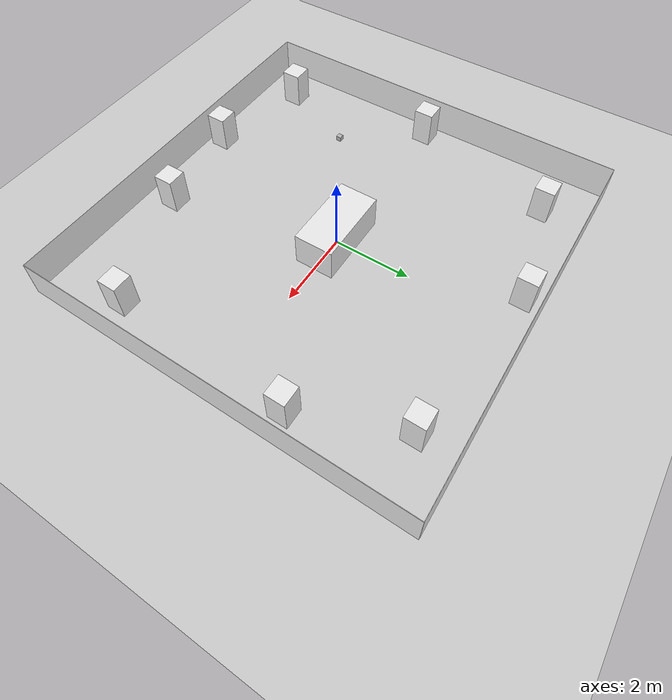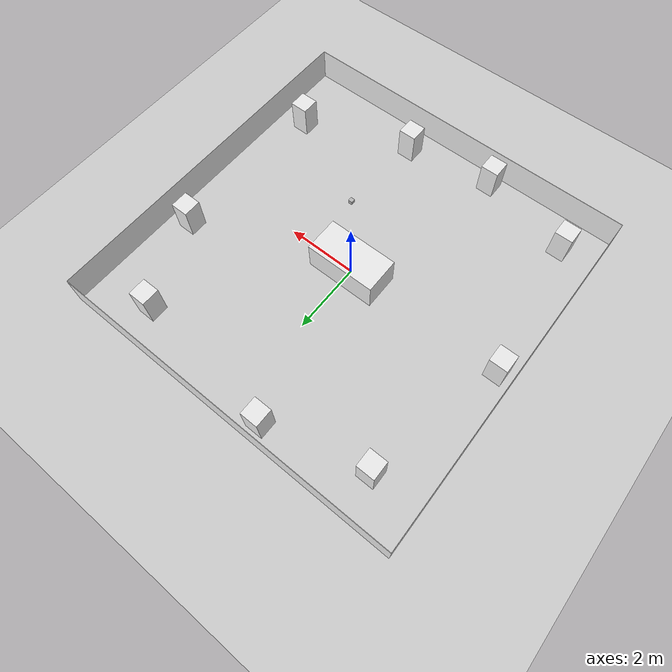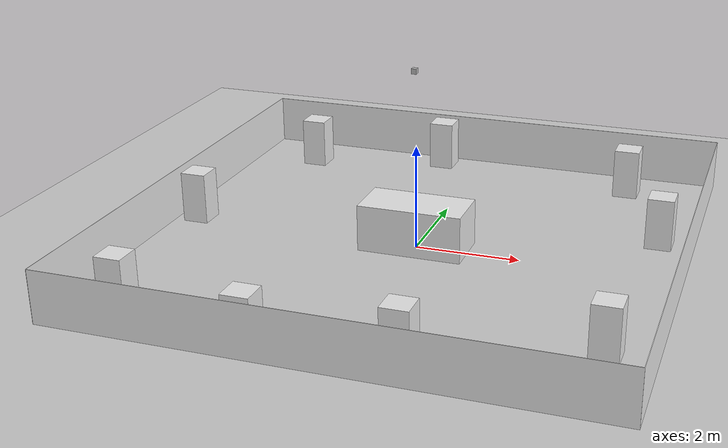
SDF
<sdf version="1.6">
 <world name="default">
  <plugin name="gazebo_occupancy_map" filename="libgazebo_2Dmap_plugin.so">
   <map_resolution>0.1</map_resolution>
   <map_height>0.5</map_height>
   <map_size_x>12</map_size_x>
   <map_size_y>12</map_size_y>
   <init_robot_x>0</init_robot_x>
   <init_robot_y>-3</init_robot_y>
  </plugin>
  <light name="sun" type="directional">
   <cast_shadows>0</cast_shadows>
   <pose>0 0 10 0 -0 0</pose>
   <diffuse>0.8 0.8 0.8 1</diffuse>
   <specular>0.2 0.2 0.2 1</specular>
   <attenuation>
    <range>1000</range>
    <constant>0.9</constant>
    <linear>0.01</linear>
    <quadratic>0.001</quadratic>
   </attenuation>
   <direction>-0.5 0.1 -0.9</direction>
  </light>
  <model name="ground_plane">
   <pose>2 0 0 0 -0 0</pose>
   <static>1</static>
   <link name="link">
    <collision name="collision">
     <geometry><plane><normal>0 0 1</normal><size>100 100</size></plane></geometry>
     <surface>
      <contact><collide_bitmask>65535</collide_bitmask></contact>
      <friction><ode><mu>100</mu><mu2>50</mu2></ode></friction>
     </surface>
    </collision>
    <visual name="visual">
     <cast_shadows>0</cast_shadows>
     <geometry><plane><normal>0 0 1</normal><size>100 100</size></plane></geometry>
     <material>
      <script><uri>file://media/materials/scripts/gazebo.material</uri><name>Gazebo/Grey</name></script>
     </material>
    </visual>
   </link>
  </model>
  <model name="table_cube_0">
   <link name="link">
    <pose>0 0 0.5 0 -0 0</pose>
    <inertial>
     <mass>10</mass>
     <inertia><ixx>0.17</ixx><ixy>0</ixy><ixz>0</ixz><iyy>0.17</iyy><iyz>0</iyz><izz>0.17</izz></inertia>
    </inertial>
    <collision name="collision">
     <geometry><box><size>10 0.01 1</size></box></geometry>
     <surface>
      <contact>
       <poissons_ratio>0.347</poissons_ratio>
       <elastic_modulus>8.8e+09</elastic_modulus>
       <ode><kp>100000</kp><kd>100</kd><max_vel>100</max_vel><min_depth>0.001</min_depth></ode>
      </contact>
     </surface>
    </collision>
    <visual name="visual">
     <geometry><box><size>10 0.01 1</size></box></geometry>
     <material>
      <script><uri>file://media/materials/scripts/gazebo.material</uri><name>Gazebo/White</name></script>
     </material>
    </visual>
   </link>
   <static>1</static>
   <pose>0 -5 0 0 -0 0</pose>
  </model>
  <model name="table_cube_1">
   <link name="link">
    <pose>0 0 0.5 0 -0 0</pose>
    <inertial>
     <mass>10</mass>
     <inertia><ixx>0.17</ixx><ixy>0</ixy><ixz>0</ixz><iyy>0.17</iyy><iyz>0</iyz><izz>0.17</izz></inertia>
    </inertial>
    <collision name="collision">
     <geometry><box><size>10 0.01 1</size></box></geometry>
     <surface>
      <contact>
       <poissons_ratio>0.347</poissons_ratio>
       <elastic_modulus>8.8e+09</elastic_modulus>
       <ode><kp>100000</kp><kd>100</kd><max_vel>100</max_vel><min_depth>0.001</min_depth></ode>
      </contact>
     </surface>
    </collision>
    <visual name="visual">
     <geometry><box><size>10 0.01 1</size></box></geometry>
     <material>
      <script><uri>file://media/materials/scripts/gazebo.material</uri><name>Gazebo/White</name></script>
     </material>
    </visual>
   </link>
   <static>1</static>
   <pose>-5 0 0 0 -0 1.57</pose>
  </model>
  <model name="table_cube_2">
   <link name="link">
    <pose>0 0 0.5 0 -0 0</pose>
    <inertial>
     <mass>10</mass>
     <inertia><ixx>0.17</ixx><ixy>0</ixy><ixz>0</ixz><iyy>0.17</iyy><iyz>0</iyz><izz>0.17</izz></inertia>
    </inertial>
    <collision name="collision">
     <geometry><box><size>10 0.01 1</size></box></geometry>
     <surface>
      <contact>
       <poissons_ratio>0.347</poissons_ratio>
       <elastic_modulus>8.8e+09</elastic_modulus>
       <ode><kp>100000</kp><kd>100</kd><max_vel>100</max_vel><min_depth>0.001</min_depth></ode>
      </contact>
     </surface>
    </collision>
    <visual name="visual">
     <geometry><box><size>10 0.01 1</size></box></geometry>
     <material>
      <script><uri>file://media/materials/scripts/gazebo.material</uri><name>Gazebo/White</name></script>
     </material>
    </visual>
   </link>
   <static>1</static>
   <pose>0 5 0 0 -0 0</pose>
  </model>
  <model name="table_cube_4">
   <link name="link">
    <pose>0 0 0.5 0 -0 0</pose>
    <inertial>
     <mass>10</mass>
     <inertia><ixx>0.17</ixx><ixy>0</ixy><ixz>0</ixz><iyy>0.17</iyy><iyz>0</iyz><izz>0.17</izz></inertia>
    </inertial>
    <collision name="collision">
     <geometry><box><size>10 0.01 1</size></box></geometry>
     <surface>
      <contact>
       <poissons_ratio>0.347</poissons_ratio>
       <elastic_modulus>8.8e+09</elastic_modulus>
       <ode><kp>100000</kp><kd>100</kd><max_vel>100</max_vel><min_depth>0.001</min_depth></ode>
      </contact>
     </surface>
    </collision>
    <visual name="visual">
     <geometry><box><size>10 0.01 1</size></box></geometry>
     <material>
      <script><uri>file://media/materials/scripts/gazebo.material</uri><name>Gazebo/White</name></script>
     </material>
    </visual>
   </link>
   <static>1</static>
   <pose>5 0 0 0 -0 1.57</pose>
  </model>
  <gravity>0 0 -9.8</gravity>
  <magnetic_field>6e-06 2.3e-05 -4.2e-05</magnetic_field>
  <atmosphere type="adiabatic"/>
  <physics name="default_physics" default="0" type="ode">
   <max_step_size>0.001</max_step_size>
   <real_time_factor>1</real_time_factor>
   <real_time_update_rate>1000</real_time_update_rate>
  </physics>
  <scene><ambient>0.4 0.4 0.4 1</ambient><background>0.7 0.7 0.7 1</background><shadows>1</shadows></scene>
  <audio><device>default</device></audio>
  <spherical_coordinates>
   <surface_model>EARTH_WGS84</surface_model>
   <latitude_deg>0</latitude_deg>
   <longitude_deg>0</longitude_deg>
   <elevation>0</elevation>
   <heading_deg>0</heading_deg>
  </spherical_coordinates>
  <model name="distorted_camera">
   <link name="link">
    <pose>0.05 0.05 0.05 0 -0 0</pose>
    <inertial>
     <mass>0.1</mass>
     <inertia>
      <ixx>0.000166667</ixx>
      <iyy>0.000166667</iyy>
      <izz>0.000166667</izz>
      <ixy>0</ixy>
      <ixz>0</ixz>
      <iyz>0</iyz>
     </inertia>
    </inertial>
    <collision name="collision"><geometry><box><size>0.1 0.1 0.1</size></box></geometry></collision>
    <visual name="visual"><geometry><box><size>0.1 0.1 0.1</size></box></geometry></visual>
    <gravity>0</gravity>
    <sensor name="camera" type="camera">
     <camera name="__default__">
      <horizontal_fov>1.047</horizontal_fov>
      <image><width>64</width><height>64</height></image>
      <clip><near>0.1</near><far>100</far></clip>
     </camera>
     <plugin name="camera_controller" filename="libgazebo_ros_camera.so">
      <alwaysOn>1</alwaysOn>
      <updateRate>0.0</updateRate>
      <cameraName>top_down_cam</cameraName>
      <imageTopicName>image_raw</imageTopicName>
      <cameraInfoTopicName>camera_info</cameraInfoTopicName>
      <frameName>camera_link</frameName>
      <hackBaseline>0.07</hackBaseline>
      <distortionK1>0.0</distortionK1>
      <distortionK2>0.0</distortionK2>
      <distortionK3>0.0</distortionK3>
      <distortionT1>0.0</distortionT1>
      <distortionT2>0.0</distortionT2>
     </plugin>
     <always_on>1</always_on>
     <update_rate>30</update_rate>
     <visualize>1</visualize>
    </sensor>
   </link>
   <pose>0 0 3.46489 0 1.57 1.57</pose>
  </model>
  <model name="table_cube">
   <link name="link">
    <pose>0 0 0.45 0 -0 0</pose>
    <inertial>
     <mass>10</mass>
     <inertia><ixx>0.17</ixx><ixy>0</ixy><ixz>0</ixz><iyy>0.17</iyy><iyz>0</iyz><izz>0.17</izz></inertia>
    </inertial>
    <collision name="collision">
     <geometry><box><size>2 1 0.9</size></box></geometry>
     <surface>
      <contact>
       <poissons_ratio>0.347</poissons_ratio>
       <elastic_modulus>8.8e+09</elastic_modulus>
       <ode><kp>100000</kp><kd>100</kd><max_vel>100</max_vel><min_depth>0.001</min_depth></ode>
      </contact>
     </surface>
    </collision>
    <visual name="visual">
     <geometry><box><size>2 1 0.9</size></box></geometry>
     <material>
      <script><uri>file://media/materials/scripts/gazebo.material</uri><name>Gazebo/White</name></script>
     </material>
    </visual>
    <sensor name="my_contact" type="contact">
     <plugin name="gazebo_contact" filename="libgazebo_contact.so"/>
     <contact><collision>collision</collision><topic>__default_topic__</topic></contact>
    </sensor>
   </link>
   <static>1</static>
  </model>
  <model name="table_cube_0_0">
   <link name="link">
    <pose>0 0 0.5 0 -0 0</pose>
    <inertial>
     <mass>10</mass>
     <inertia><ixx>0.17</ixx><ixy>0</ixy><ixz>0</ixz><iyy>0.17</iyy><iyz>0</iyz><izz>0.17</izz></inertia>
    </inertial>
    <collision name="collision">
     <geometry><box><size>0.5 0.5 1</size></box></geometry>
     <surface>
      <contact>
       <poissons_ratio>0.347</poissons_ratio>
       <elastic_modulus>8.8e+09</elastic_modulus>
       <ode><kp>100000</kp><kd>100</kd><max_vel>100</max_vel><min_depth>0.001</min_depth></ode>
      </contact>
     </surface>
    </collision>
    <visual name="visual">
     <geometry><box><size>0.5 0.5 1</size></box></geometry>
     <material>
      <script><uri>file://media/materials/scripts/gazebo.material</uri><name>Gazebo/White</name></script>
     </material>
    </visual>
   </link>
   <static>1</static>
   <pose>-3.99377 -3.9779 0 0 -0 0</pose>
  </model>
  <model name="table_cube_0_0_clone">
   <link name="link">
    <pose>0 0 0.5 0 -0 0</pose>
    <inertial>
     <mass>10</mass>
     <inertia><ixx>0.17</ixx><ixy>0</ixy><ixz>0</ixz><iyy>0.17</iyy><iyz>0</iyz><izz>0.17</izz></inertia>
    </inertial>
    <collision name="collision">
     <geometry><box><size>0.5 0.5 1</size></box></geometry>
     <surface>
      <contact>
       <poissons_ratio>0.347</poissons_ratio>
       <elastic_modulus>8.8e+09</elastic_modulus>
       <ode><kp>100000</kp><kd>100</kd><max_vel>100</max_vel><min_depth>0.001</min_depth></ode>
      </contact>
     </surface>
    </collision>
    <visual name="visual">
     <geometry><box><size>0.5 0.5 1</size></box></geometry>
     <material>
      <script><uri>file://media/materials/scripts/gazebo.material</uri><name>Gazebo/White</name></script>
     </material>
    </visual>
   </link>
   <static>1</static>
   <pose>4.16805 -3.07617 0 0 -0 0</pose>
  </model>
  <model name="table_cube_0_0_clone_0">
   <link name="link">
    <pose>0 0 0.5 0 -0 0</pose>
    <inertial>
     <mass>10</mass>
     <inertia><ixx>0.17</ixx><ixy>0</ixy><ixz>0</ixz><iyy>0.17</iyy><iyz>0</iyz><izz>0.17</izz></inertia>
    </inertial>
    <collision name="collision">
     <geometry><box><size>0.5 0.5 1</size></box></geometry>
     <surface>
      <contact>
       <poissons_ratio>0.347</poissons_ratio>
       <elastic_modulus>8.8e+09</elastic_modulus>
       <ode><kp>100000</kp><kd>100</kd><max_vel>100</max_vel><min_depth>0.001</min_depth></ode>
      </contact>
     </surface>
    </collision>
    <visual name="visual">
     <geometry><box><size>0.5 0.5 1</size></box></geometry>
     <material>
      <script><uri>file://media/materials/scripts/gazebo.material</uri><name>Gazebo/White</name></script>
     </material>
    </visual>
   </link>
   <static>1</static>
   <pose>3.30623 4.0254 0 0 -0 0</pose>
  </model>
  <model name="table_cube_0_0_clone_1">
   <link name="link">
    <pose>0 0 0.5 0 -0 0</pose>
    <inertial>
     <mass>10</mass>
     <inertia><ixx>0.17</ixx><ixy>0</ixy><ixz>0</ixz><iyy>0.17</iyy><iyz>0</iyz><izz>0.17</izz></inertia>
    </inertial>
    <collision name="collision">
     <geometry><box><size>0.5 0.5 1</size></box></geometry>
     <surface>
      <contact>
       <poissons_ratio>0.347</poissons_ratio>
       <elastic_modulus>8.8e+09</elastic_modulus>
       <ode><kp>100000</kp><kd>100</kd><max_vel>100</max_vel><min_depth>0.001</min_depth></ode>
      </contact>
     </surface>
    </collision>
    <visual name="visual">
     <geometry><box><size>0.5 0.5 1</size></box></geometry>
     <material>
      <script><uri>file://media/materials/scripts/gazebo.material</uri><name>Gazebo/White</name></script>
     </material>
    </visual>
   </link>
   <static>1</static>
   <pose>-3.60693 3.83298 0 0 -0 0</pose>
  </model>
  <model name="table_cube_0_0_clone_2">
   <link name="link">
    <pose>0 0 0.5 0 -0 0</pose>
    <inertial>
     <mass>10</mass>
     <inertia><ixx>0.17</ixx><ixy>0</ixy><ixz>0</ixz><iyy>0.17</iyy><iyz>0</iyz><izz>0.17</izz></inertia>
    </inertial>
    <collision name="collision">
     <geometry><box><size>0.5 0.5 1</size></box></geometry>
     <surface>
      <contact>
       <poissons_ratio>0.347</poissons_ratio>
       <elastic_modulus>8.8e+09</elastic_modulus>
       <ode><kp>100000</kp><kd>100</kd><max_vel>100</max_vel><min_depth>0.001</min_depth></ode>
      </contact>
     </surface>
    </collision>
    <visual name="visual">
     <geometry><box><size>0.5 0.5 1</size></box></geometry>
     <material>
      <script><uri>file://media/materials/scripts/gazebo.material</uri><name>Gazebo/White</name></script>
     </material>
    </visual>
   </link>
   <static>1</static>
   <pose>1.1299 -4.20473 0 0 -0 0</pose>
  </model>
  <model name="table_cube_0_0_clone_3">
   <link name="link">
    <pose>0 0 0.5 0 -0 0</pose>
    <inertial>
     <mass>10</mass>
     <inertia><ixx>0.17</ixx><ixy>0</ixy><ixz>0</ixz><iyy>0.17</iyy><iyz>0</iyz><izz>0.17</izz></inertia>
    </inertial>
    <collision name="collision">
     <geometry><box><size>0.5 0.5 1</size></box></geometry>
     <surface>
      <contact>
       <poissons_ratio>0.347</poissons_ratio>
       <elastic_modulus>8.8e+09</elastic_modulus>
       <ode><kp>100000</kp><kd>100</kd><max_vel>100</max_vel><min_depth>0.001</min_depth></ode>
      </contact>
     </surface>
    </collision>
    <visual name="visual">
     <geometry><box><size>0.5 0.5 1</size></box></geometry>
     <material>
      <script><uri>file://media/materials/scripts/gazebo.material</uri><name>Gazebo/White</name></script>
     </material>
    </visual>
   </link>
   <static>1</static>
   <pose>4.34648 1.54336 0 0 -0 0</pose>
  </model>
  <model name="table_cube_0_0_clone_4">
   <link name="link">
    <pose>0 0 0.5 0 -0 0</pose>
    <inertial>
     <mass>10</mass>
     <inertia><ixx>0.17</ixx><ixy>0</ixy><ixz>0</ixz><iyy>0.17</iyy><iyz>0</iyz><izz>0.17</izz></inertia>
    </inertial>
    <collision name="collision">
     <geometry><box><size>0.5 0.5 1</size></box></geometry>
     <surface>
      <contact>
       <poissons_ratio>0.347</poissons_ratio>
       <elastic_modulus>8.8e+09</elastic_modulus>
       <ode><kp>100000</kp><kd>100</kd><max_vel>100</max_vel><min_depth>0.001</min_depth></ode>
      </contact>
     </surface>
    </collision>
    <visual name="visual">
     <geometry><box><size>0.5 0.5 1</size></box></geometry>
     <material>
      <script><uri>file://media/materials/scripts/gazebo.material</uri><name>Gazebo/White</name></script>
     </material>
    </visual>
   </link>
   <static>1</static>
   <pose>-4.54848 0.010758 0 0 -0 0</pose>
  </model>
  <model name="table_cube_0_0_clone_5">
   <link name="link">
    <pose>0 0 0.5 0 -0 0</pose>
    <inertial>
     <mass>10</mass>
     <inertia><ixx>0.17</ixx><ixy>0</ixy><ixz>0</ixz><iyy>0.17</iyy><iyz>0</iyz><izz>0.17</izz></inertia>
    </inertial>
    <collision name="collision">
     <geometry><box><size>0.5 0.5 1</size></box></geometry>
     <surface>
      <contact>
       <poissons_ratio>0.347</poissons_ratio>
       <elastic_modulus>8.8e+09</elastic_modulus>
       <ode><kp>100000</kp><kd>100</kd><max_vel>100</max_vel><min_depth>0.001</min_depth></ode>
      </contact>
     </surface>
    </collision>
    <visual name="visual">
     <geometry><box><size>0.5 0.5 1</size></box></geometry>
     <material>
      <script><uri>file://media/materials/scripts/gazebo.material</uri><name>Gazebo/White</name></script>
     </material>
    </visual>
   </link>
   <static>1</static>
   <pose>-0.867472 4.53816 0 0 -0 0</pose>
  </model>
  <model name="table_cube_0_0_clone_6">
   <link name="link">
    <pose>0 0 0.5 0 -0 0</pose>
    <inertial>
     <mass>10</mass>
     <inertia><ixx>0.17</ixx><ixy>0</ixy><ixz>0</ixz><iyy>0.17</iyy><iyz>0</iyz><izz>0.17</izz></inertia>
    </inertial>
    <collision name="collision">
     <geometry><box><size>0.5 0.5 1</size></box></geometry>
     <surface>
      <contact>
       <poissons_ratio>0.347</poissons_ratio>
       <elastic_modulus>8.8e+09</elastic_modulus>
       <ode><kp>100000</kp><kd>100</kd><max_vel>100</max_vel><min_depth>0.001</min_depth></ode>
      </contact>
     </surface>
    </collision>
    <visual name="visual">
     <geometry><box><size>0.5 0.5 1</size></box></geometry>
     <material>
      <script><uri>file://media/materials/scripts/gazebo.material</uri><name>Gazebo/White</name></script>
     </material>
    </visual>
   </link>
   <static>1</static>
   <pose>-1.3626 -4.5795 0 0 -0 0</pose>
  </model>
 </world>
</sdf>
